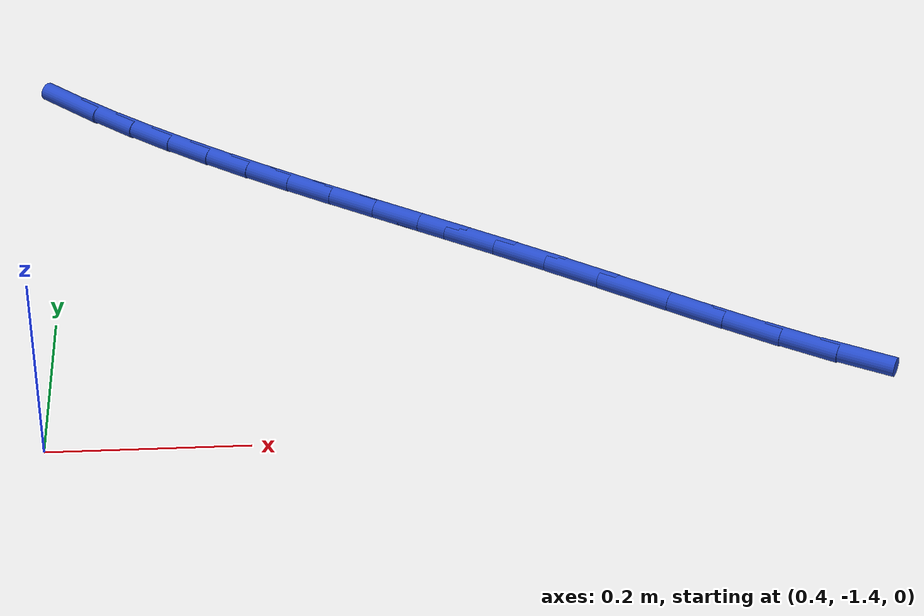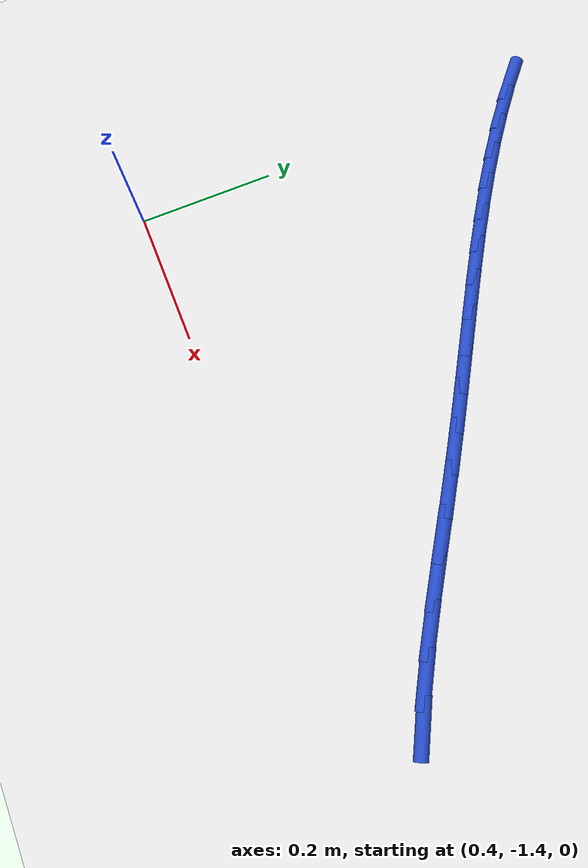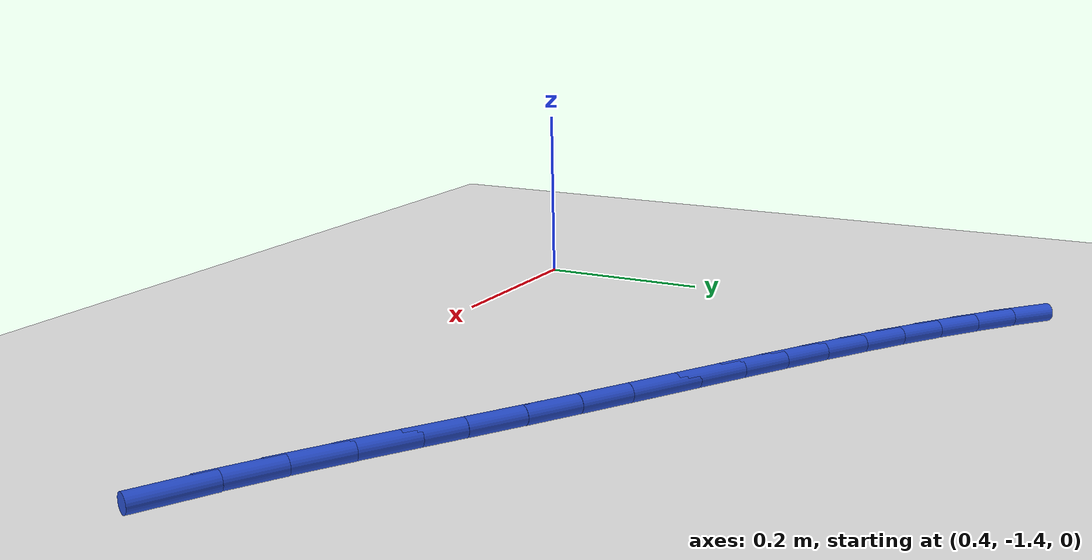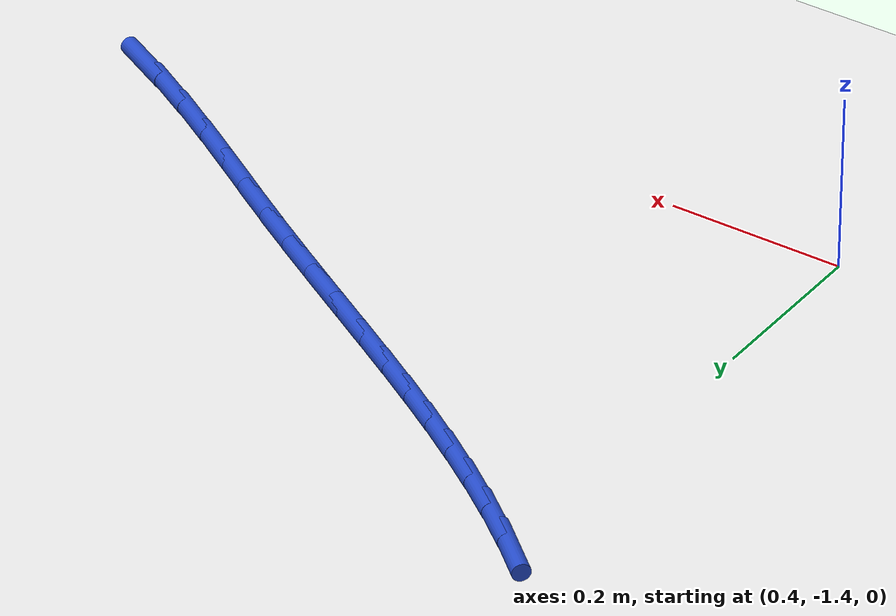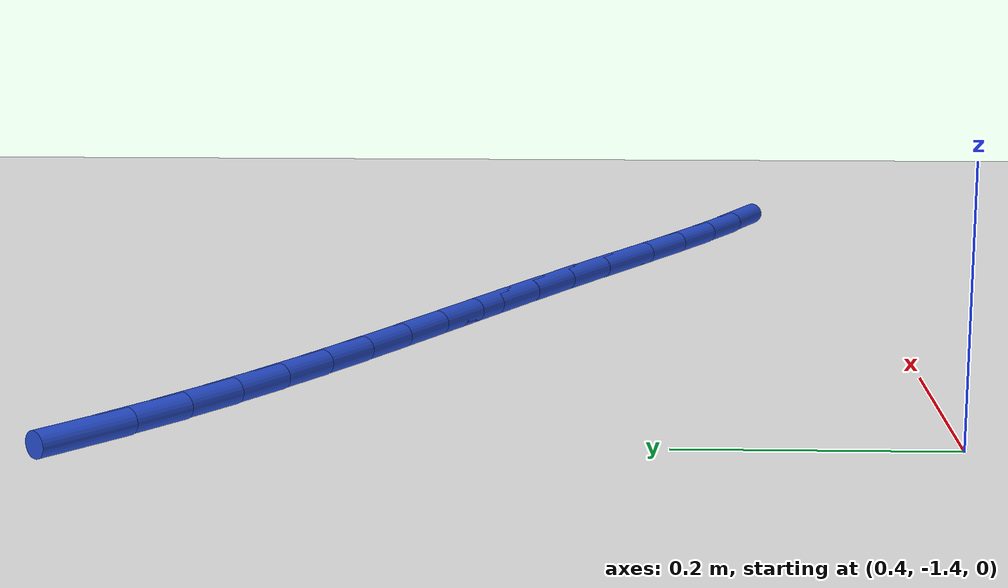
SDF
<sdf version="1.6">
 <world name="default">
  <model name="ground_plane">
   <static>1</static>
   <link name="link">
    <collision name="collision">
     <geometry><plane><normal>0 0 1</normal><size>100 100</size></plane></geometry>
     <surface><friction><ode><mu>100</mu><mu2>50</mu2></ode></friction></surface>
    </collision>
    <visual name="visual">
     <cast_shadows>0</cast_shadows>
     <geometry><plane><normal>0 0 1</normal><size>100 100</size></plane></geometry>
     <material>
      <script><uri>file://media/materials/scripts/gazebo.material</uri><name>Gazebo/WhiteGlow</name></script>
     </material>
    </visual>
   </link>
  </model>
  <model name="line">
   <link name="link_106">
    <pose>1.204968449480111 -1.3038418711839015 0.01 0 1.57 -0.4745863241313522</pose>
    <collision name="collision">
     <geometry><cylinder><radius>0.01</radius><length>0.08</length></cylinder></geometry>
    </collision>
    <visual name="visual">
     <material>
      <script><name>Gazebo/Blue</name><uri>file://media/materials/scripts/gazebo.material</uri></script>
     </material>
     <geometry><cylinder><radius>0.01</radius><length>0.08</length></cylinder></geometry>
    </visual>
   </link>
   <link name="link_107">
    <pose>1.1526934949954943 -1.276985658207285 0.01 0 1.57 -0.5176486240493611</pose>
    <collision name="collision">
     <geometry><cylinder><radius>0.01</radius><length>0.08</length></cylinder></geometry>
    </collision>
    <visual name="visual">
     <material>
      <script><name>Gazebo/Blue</name><uri>file://media/materials/scripts/gazebo.material</uri></script>
     </material>
     <geometry><cylinder><radius>0.01</radius><length>0.08</length></cylinder></geometry>
    </visual>
   </link>
   <link name="link_108">
    <pose>1.0998842232177914 -1.2469137457189867 0.01 0 1.57 -0.5455229619965056</pose>
    <collision name="collision">
     <geometry><cylinder><radius>0.01</radius><length>0.08</length></cylinder></geometry>
    </collision>
    <visual name="visual">
     <material>
      <script><name>Gazebo/Blue</name><uri>file://media/materials/scripts/gazebo.material</uri></script>
     </material>
     <geometry><cylinder><radius>0.01</radius><length>0.08</length></cylinder></geometry>
    </visual>
   </link>
   <link name="link_109">
    <pose>1.0469317137388519 -1.2147735800624018 0.01 0 1.57 -0.5602424772035872</pose>
    <collision name="collision">
     <geometry><cylinder><radius>0.01</radius><length>0.08</length></cylinder></geometry>
    </collision>
    <visual name="visual">
     <material>
      <script><name>Gazebo/Blue</name><uri>file://media/materials/scripts/gazebo.material</uri></script>
     </material>
     <geometry><cylinder><radius>0.01</radius><length>0.08</length></cylinder></geometry>
    </visual>
   </link>
   <link name="link_110">
    <pose>0.9942270461505294 -1.1817126075809268 0.01 0 1.57 -0.5626391465335301</pose>
    <collision name="collision">
     <geometry><cylinder><radius>0.01</radius><length>0.08</length></cylinder></geometry>
    </collision>
    <visual name="visual">
     <material>
      <script><name>Gazebo/Blue</name><uri>file://media/materials/scripts/gazebo.material</uri></script>
     </material>
     <geometry><cylinder><radius>0.01</radius><length>0.08</length></cylinder></geometry>
    </visual>
   </link>
   <link name="link_111">
    <pose>0.9421613000446739 -1.1488782746179569 0.01 0 1.57 -0.553492936877637</pose>
    <collision name="collision">
     <geometry><cylinder><radius>0.01</radius><length>0.08</length></cylinder></geometry>
    </collision>
    <visual name="visual">
     <material>
      <script><name>Gazebo/Blue</name><uri>file://media/materials/scripts/gazebo.material</uri></script>
     </material>
     <geometry><cylinder><radius>0.01</radius><length>0.08</length></cylinder></geometry>
    </visual>
   </link>
   <link name="link_112">
    <pose>0.8910987238687672 -1.1173256123858695 0.01 0 1.57 -0.5422340122075051</pose>
    <collision name="collision">
     <geometry><cylinder><radius>0.01</radius><length>0.08</length></cylinder></geometry>
    </collision>
    <visual name="visual">
     <material>
      <script><name>Gazebo/Blue</name><uri>file://media/materials/scripts/gazebo.material</uri></script>
     </material>
     <geometry><cylinder><radius>0.01</radius><length>0.08</length></cylinder></geometry>
    </visual>
   </link>
   <link name="link_113">
    <pose>0.8411488369190339 -1.0872322825908034 0.01 0 1.57 -0.5346820282933732</pose>
    <collision name="collision">
     <geometry><cylinder><radius>0.01</radius><length>0.08</length></cylinder></geometry>
    </collision>
    <visual name="visual">
     <material>
      <script><name>Gazebo/Blue</name><uri>file://media/materials/scripts/gazebo.material</uri></script>
     </material>
     <geometry><cylinder><radius>0.01</radius><length>0.08</length></cylinder></geometry>
    </visual>
   </link>
   <link name="link_114">
    <pose>0.7922804370798995 -1.0582912569260696 0.01 0 1.57 -0.5312839152889868</pose>
    <collision name="collision">
     <geometry><cylinder><radius>0.01</radius><length>0.08</length></cylinder></geometry>
    </collision>
    <visual name="visual">
     <material>
      <script><name>Gazebo/Blue</name><uri>file://media/materials/scripts/gazebo.material</uri></script>
     </material>
     <geometry><cylinder><radius>0.01</radius><length>0.08</length></cylinder></geometry>
    </visual>
   </link>
   <link name="link_115">
    <pose>0.74446084138357 -1.0301904065514442 0.01 0 1.57 -0.5323801526294121</pose>
    <collision name="collision">
     <geometry><cylinder><radius>0.01</radius><length>0.08</length></cylinder></geometry>
    </collision>
    <visual name="visual">
     <material>
      <script><name>Gazebo/Blue</name><uri>file://media/materials/scripts/gazebo.material</uri></script>
     </material>
     <geometry><cylinder><radius>0.01</radius><length>0.08</length></cylinder></geometry>
    </visual>
   </link>
   <link name="link_116">
    <pose>0.6976573668622525 -1.0026176026267026 0.01 0 1.57 -0.5382481004574153</pose>
    <collision name="collision">
     <geometry><cylinder><radius>0.01</radius><length>0.08</length></cylinder></geometry>
    </collision>
    <visual name="visual">
     <material>
      <script><name>Gazebo/Blue</name><uri>file://media/materials/scripts/gazebo.material</uri></script>
     </material>
     <geometry><cylinder><radius>0.01</radius><length>0.08</length></cylinder></geometry>
    </visual>
   </link>
   <link name="link_117">
    <pose>0.6518373305481538 -0.9752607163116223 0.01 0 1.57 -0.5490844126230346</pose>
    <collision name="collision">
     <geometry><cylinder><radius>0.01</radius><length>0.08</length></cylinder></geometry>
    </collision>
    <visual name="visual">
     <material>
      <script><name>Gazebo/Blue</name><uri>file://media/materials/scripts/gazebo.material</uri></script>
     </material>
     <geometry><cylinder><radius>0.01</radius><length>0.08</length></cylinder></geometry>
    </visual>
   </link>
   <link name="link_118">
    <pose>0.6069680494734823 -0.9478076187659797 0.01 0 1.57 -0.5649861693047606</pose>
    <collision name="collision">
     <geometry><cylinder><radius>0.01</radius><length>0.08</length></cylinder></geometry>
    </collision>
    <visual name="visual">
     <material>
      <script><name>Gazebo/Blue</name><uri>file://media/materials/scripts/gazebo.material</uri></script>
     </material>
     <geometry><cylinder><radius>0.01</radius><length>0.08</length></cylinder></geometry>
    </visual>
   </link>
   <link name="link_119">
    <pose>0.5630168406704443 -0.9199461811495512 0.01 0 1.57 -0.5859317931199238</pose>
    <collision name="collision">
     <geometry><cylinder><radius>0.01</radius><length>0.08</length></cylinder></geometry>
    </collision>
    <visual name="visual">
     <material>
      <script><name>Gazebo/Blue</name><uri>file://media/materials/scripts/gazebo.material</uri></script>
     </material>
     <geometry><cylinder><radius>0.01</radius><length>0.08</length></cylinder></geometry>
    </visual>
   </link>
   <link name="link_120">
    <pose>0.519951021171247 -0.8913642746221131 0.01 0 1.57 -0.6117638044156287</pose>
    <collision name="collision">
     <geometry><cylinder><radius>0.01</radius><length>0.08</length></cylinder></geometry>
    </collision>
    <visual name="visual">
     <material>
      <script><name>Gazebo/Blue</name><uri>file://media/materials/scripts/gazebo.material</uri></script>
     </material>
     <geometry><cylinder><radius>0.01</radius><length>0.08</length></cylinder></geometry>
    </visual>
   </link>
   <link name="link_121">
    <pose>0.4777379080080977 -0.8617497703434418 0.01 0 1.57 -0.6421764980935528</pose>
    <collision name="collision">
     <geometry><cylinder><radius>0.01</radius><length>0.08</length></cylinder></geometry>
    </collision>
    <visual name="visual">
     <material>
      <script><name>Gazebo/Blue</name><uri>file://media/materials/scripts/gazebo.material</uri></script>
     </material>
     <geometry><cylinder><radius>0.01</radius><length>0.08</length></cylinder></geometry>
    </visual>
   </link>
   <link name="link_122">
    <pose>0.4363448182132028 -0.8307905394733139 0.01 0 1.57 -0.6767122966386172</pose>
    <collision name="collision">
     <geometry><cylinder><radius>0.01</radius><length>0.08</length></cylinder></geometry>
    </collision>
    <visual name="visual">
     <material>
      <script><name>Gazebo/Blue</name><uri>file://media/materials/scripts/gazebo.material</uri></script>
     </material>
     <geometry><cylinder><radius>0.01</radius><length>0.08</length></cylinder></geometry>
    </visual>
   </link>
   <link name="link_123">
    <pose>0.3957390688187707 -0.7981744531715063 0.01 0 1.57 -0.7147235355660504</pose>
    <collision name="collision">
     <geometry><cylinder><radius>0.01</radius><length>0.08</length></cylinder></geometry>
    </collision>
    <visual name="visual">
     <material>
      <script><name>Gazebo/Blue</name><uri>file://media/materials/scripts/gazebo.material</uri></script>
     </material>
     <geometry><cylinder><radius>0.01</radius><length>0.08</length></cylinder></geometry>
    </visual>
   </link>
  </model>
 </world>
</sdf>
